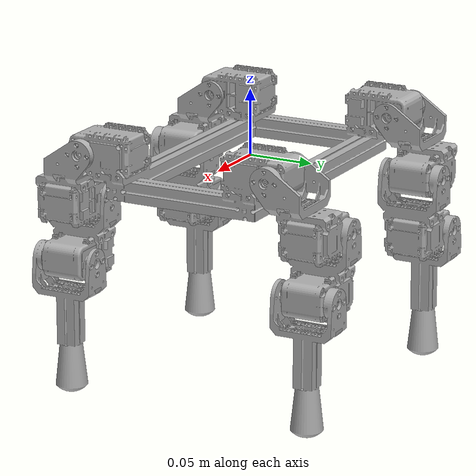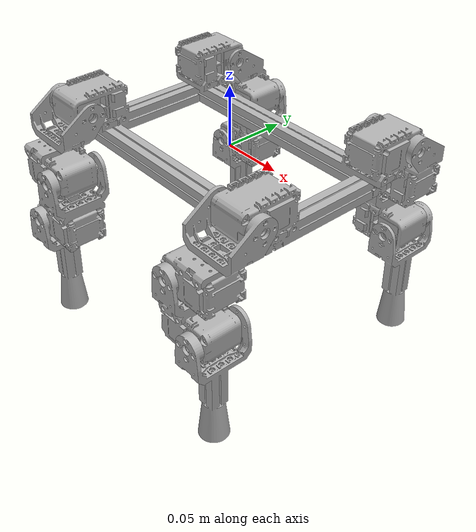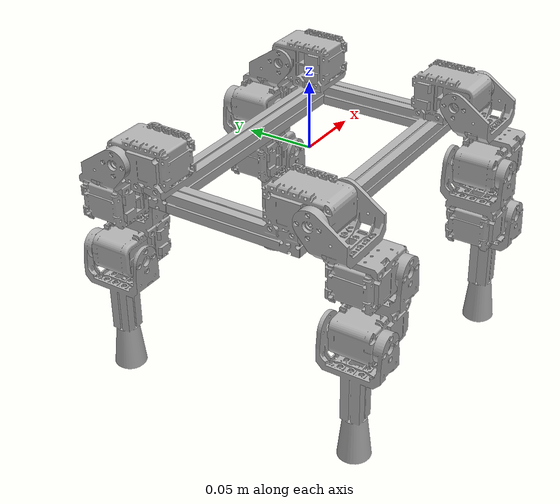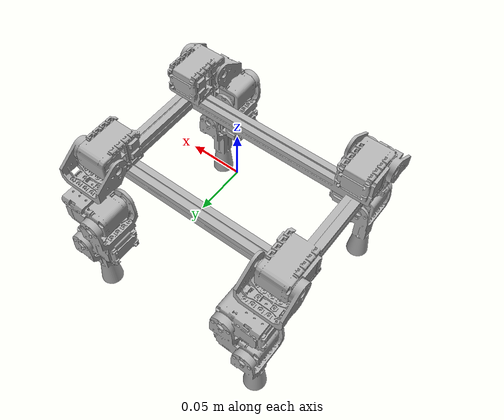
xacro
<?xml version="1.0" ?>
<robot name="sparky6" xmlns:xacro="http://www.ros.org/wiki/xacro">

<xacro:include filename="$(find sparky6_description)/urdf/materials.xacro" />
<xacro:include filename="$(find sparky6_description)/urdf/sparky6.trans" />
<xacro:include filename="$(find sparky6_description)/urdf/sparky6.gazebo" />
<link name="base_link">
  <inertial>
    <origin rpy="0 0 0" xyz="7.299055908234209e-06 -4.907460487480364e-05 0.008379944472130002"/>
    <mass value="0.29530745125532065"/>
    <inertia ixx="0.001007" ixy="1.1e-05" ixz="-1e-06" iyy="0.002439" iyz="-0.0" izz="0.003326"/>
  </inertial>
  <visual>
    <origin rpy="0 0 0" xyz="0 0 0"/>
    <geometry>
      <mesh filename="package://sparky6_description/meshes/base_link.stl" scale="0.001 0.001 0.001"/>
    </geometry>
    <material name="silver"/>
  </visual>
  <collision>
    <origin rpy="0 0 0" xyz="0 0 0"/>
    <geometry>
      <mesh filename="package://sparky6_description/meshes/base_link.stl" scale="0.001 0.001 0.001"/>
    </geometry>
  </collision>
</link>

<link name="rf_hip_1">
  <inertial>
    <origin rpy="0 0 0" xyz="-0.020504591046096754 -0.020916720968156957 -0.035571117115763856"/>
    <mass value="0.05388908972741452"/>
    <inertia ixx="1.8e-05" ixy="-1e-06" ixz="-3e-06" iyy="2.3e-05" iyz="-4e-06" izz="1.9e-05"/>
  </inertial>
  <visual>
    <origin rpy="0 0 0" xyz="-0.111298 0.075143 -0.019615"/>
    <geometry>
      <mesh filename="package://sparky6_description/meshes/rf_hip_1.stl" scale="0.001 0.001 0.001"/>
    </geometry>
    <material name="silver"/>
  </visual>
  <collision>
    <origin rpy="0 0 0" xyz="-0.111298 0.075143 -0.019615"/>
    <geometry>
      <mesh filename="package://sparky6_description/meshes/rf_hip_1.stl" scale="0.001 0.001 0.001"/>
    </geometry>
  </collision>
</link>

<link name="rf_upper_1">
  <inertial>
    <origin rpy="0 0 0" xyz="0.007395927338858896 0.01297355912901861 -0.03891819141199494"/>
    <mass value="0.0527957388945323"/>
    <inertia ixx="1.8e-05" ixy="-0.0" ixz="2e-06" iyy="2e-05" iyz="1e-06" izz="1.6e-05"/>
  </inertial>
  <visual>
    <origin rpy="0 0 0" xyz="-0.075104 0.111743 0.022385"/>
    <geometry>
      <mesh filename="package://sparky6_description/meshes/rf_upper_1.stl" scale="0.001 0.001 0.001"/>
    </geometry>
    <material name="silver"/>
  </visual>
  <collision>
    <origin rpy="0 0 0" xyz="-0.075104 0.111743 0.022385"/>
    <geometry>
      <mesh filename="package://sparky6_description/meshes/rf_upper_1.stl" scale="0.001 0.001 0.001"/>
    </geometry>
  </collision>
</link>

<link name="rf_lower_1">
  <inertial>
    <origin rpy="0 0 0" xyz="-0.0007002370548039455 0.012844858668187659 -0.052271117977042425"/>
    <mass value="0.02761962493772662"/>
    <inertia ixx="3.2e-05" ixy="0.0" ixz="-0.0" iyy="3e-05" iyz="1e-06" izz="4e-06"/>
  </inertial>
  <visual>
    <origin rpy="0 0 0" xyz="-0.097604 0.11165 0.067385"/>
    <geometry>
      <mesh filename="package://sparky6_description/meshes/rf_lower_1.stl" scale="0.001 0.001 0.001"/>
    </geometry>
    <material name="silver"/>
  </visual>
  <collision>
    <origin rpy="0 0 0" xyz="-0.097604 0.11165 0.067385"/>
    <geometry>
      <mesh filename="package://sparky6_description/meshes/rf_lower_1.stl" scale="0.001 0.001 0.001"/>
    </geometry>
  </collision>
</link>

<link name="lf_hip_1">
  <inertial>
    <origin rpy="0 0 0" xyz="-0.020504590999523772 0.020917069609504638 -0.035571116932230584"/>
    <mass value="0.05388908979068711"/>
    <inertia ixx="1.8e-05" ixy="1e-06" ixz="-3e-06" iyy="2.3e-05" iyz="4e-06" izz="1.9e-05"/>
  </inertial>
  <visual>
    <origin rpy="0 0 0" xyz="-0.111298 -0.074744 -0.019615"/>
    <geometry>
      <mesh filename="package://sparky6_description/meshes/lf_hip_1.stl" scale="0.001 0.001 0.001"/>
    </geometry>
    <material name="silver"/>
  </visual>
  <collision>
    <origin rpy="0 0 0" xyz="-0.111298 -0.074744 -0.019615"/>
    <geometry>
      <mesh filename="package://sparky6_description/meshes/lf_hip_1.stl" scale="0.001 0.001 0.001"/>
    </geometry>
  </collision>
</link>

<link name="lf_upper_1">
  <inertial>
    <origin rpy="0 0 0" xyz="0.007395909911934839 -0.012974204347680082 -0.03891809893494623"/>
    <mass value="0.05279586200500898"/>
    <inertia ixx="1.8e-05" ixy="0.0" ixz="2e-06" iyy="2e-05" iyz="-1e-06" izz="1.6e-05"/>
  </inertial>
  <visual>
    <origin rpy="0 0 0" xyz="-0.075104 -0.111345 0.022385"/>
    <geometry>
      <mesh filename="package://sparky6_description/meshes/lf_upper_1.stl" scale="0.001 0.001 0.001"/>
    </geometry>
    <material name="silver"/>
  </visual>
  <collision>
    <origin rpy="0 0 0" xyz="-0.075104 -0.111345 0.022385"/>
    <geometry>
      <mesh filename="package://sparky6_description/meshes/lf_upper_1.stl" scale="0.001 0.001 0.001"/>
    </geometry>
  </collision>
</link>

<link name="lf_lower_1">
  <inertial>
    <origin rpy="0 0 0" xyz="0.000700770909144055 -0.01284450998542723 -0.05227111797704169"/>
    <mass value="0.02761962493772662"/>
    <inertia ixx="3.2e-05" ixy="0.0" ixz="0.0" iyy="3e-05" iyz="-1e-06" izz="4e-06"/>
  </inertial>
  <visual>
    <origin rpy="0 0 0" xyz="-0.097604 -0.111251 0.067385"/>
    <geometry>
      <mesh filename="package://sparky6_description/meshes/lf_lower_1.stl" scale="0.001 0.001 0.001"/>
    </geometry>
    <material name="silver"/>
  </visual>
  <collision>
    <origin rpy="0 0 0" xyz="-0.097604 -0.111251 0.067385"/>
    <geometry>
      <mesh filename="package://sparky6_description/meshes/lf_lower_1.stl" scale="0.001 0.001 0.001"/>
    </geometry>
  </collision>
</link>

<link name="rh_hip_1">
  <inertial>
    <origin rpy="0 0 0" xyz="0.020504349543890577 -0.02091666919420533 -0.03557111693223084"/>
    <mass value="0.05388908979068711"/>
    <inertia ixx="1.8e-05" ixy="1e-06" ixz="3e-06" iyy="2.3e-05" iyz="-4e-06" izz="1.9e-05"/>
  </inertial>
  <visual>
    <origin rpy="0 0 0" xyz="0.109652 0.07416 -0.019615"/>
    <geometry>
      <mesh filename="package://sparky6_description/meshes/rh_hip_1.stl" scale="0.001 0.001 0.001"/>
    </geometry>
    <material name="silver"/>
  </visual>
  <collision>
    <origin rpy="0 0 0" xyz="0.109652 0.07416 -0.019615"/>
    <geometry>
      <mesh filename="package://sparky6_description/meshes/rh_hip_1.stl" scale="0.001 0.001 0.001"/>
    </geometry>
  </collision>
</link>

<link name="rh_upper_1">
  <inertial>
    <origin rpy="0 0 0" xyz="-0.007395151367566591 0.012973604762980623 -0.03891809893494652"/>
    <mass value="0.05279586200500898"/>
    <inertia ixx="1.8e-05" ixy="0.0" ixz="-2e-06" iyy="2e-05" iyz="1e-06" izz="1.6e-05"/>
  </inertial>
  <visual>
    <origin rpy="0 0 0" xyz="0.073459 0.11076 0.022385"/>
    <geometry>
      <mesh filename="package://sparky6_description/meshes/rh_upper_1.stl" scale="0.001 0.001 0.001"/>
    </geometry>
    <material name="silver"/>
  </visual>
  <collision>
    <origin rpy="0 0 0" xyz="0.073459 0.11076 0.022385"/>
    <geometry>
      <mesh filename="package://sparky6_description/meshes/rh_upper_1.stl" scale="0.001 0.001 0.001"/>
    </geometry>
  </collision>
</link>

<link name="rh_lower_1">
  <inertial>
    <origin rpy="0 0 0" xyz="-0.0007000123647771528 0.012844910400728604 -0.05227111797704198"/>
    <mass value="0.02761962493772662"/>
    <inertia ixx="3.2e-05" ixy="0.0" ixz="-0.0" iyy="3e-05" iyz="1e-06" izz="4e-06"/>
  </inertial>
  <visual>
    <origin rpy="0 0 0" xyz="0.095959 0.110667 0.067385"/>
    <geometry>
      <mesh filename="package://sparky6_description/meshes/rh_lower_1.stl" scale="0.001 0.001 0.001"/>
    </geometry>
    <material name="silver"/>
  </visual>
  <collision>
    <origin rpy="0 0 0" xyz="0.095959 0.110667 0.067385"/>
    <geometry>
      <mesh filename="package://sparky6_description/meshes/rh_lower_1.stl" scale="0.001 0.001 0.001"/>
    </geometry>
  </collision>
</link>

<link name="lh_hip_1">
  <inertial>
    <origin rpy="0 0 0" xyz="0.020504324900517096 0.020916111095980364 -0.03557111711576425"/>
    <mass value="0.05388908972741452"/>
    <inertia ixx="1.8e-05" ixy="-1e-06" ixz="3e-06" iyy="2.3e-05" iyz="4e-06" izz="1.9e-05"/>
  </inertial>
  <visual>
    <origin rpy="0 0 0" xyz="0.111992 -0.074753 -0.019615"/>
    <geometry>
      <mesh filename="package://sparky6_description/meshes/lh_hip_1.stl" scale="0.001 0.001 0.001"/>
    </geometry>
    <material name="silver"/>
  </visual>
  <collision>
    <origin rpy="0 0 0" xyz="0.111992 -0.074753 -0.019615"/>
    <geometry>
      <mesh filename="package://sparky6_description/meshes/lh_hip_1.stl" scale="0.001 0.001 0.001"/>
    </geometry>
  </collision>
</link>

<link name="lh_upper_1">
  <inertial>
    <origin rpy="0 0 0" xyz="-0.007395193484439774 -0.01297416900119433 -0.03891819141199544"/>
    <mass value="0.0527957388945323"/>
    <inertia ixx="1.8e-05" ixy="-0.0" ixz="-2e-06" iyy="2e-05" iyz="-1e-06" izz="1.6e-05"/>
  </inertial>
  <visual>
    <origin rpy="0 0 0" xyz="0.075799 -0.111353 0.022385"/>
    <geometry>
      <mesh filename="package://sparky6_description/meshes/lh_upper_1.stl" scale="0.001 0.001 0.001"/>
    </geometry>
    <material name="silver"/>
  </visual>
  <collision>
    <origin rpy="0 0 0" xyz="0.075799 -0.111353 0.022385"/>
    <geometry>
      <mesh filename="package://sparky6_description/meshes/lh_upper_1.stl" scale="0.001 0.001 0.001"/>
    </geometry>
  </collision>
</link>

<link name="lh_lower_1">
  <inertial>
    <origin rpy="0 0 0" xyz="0.0007009709092222066 -0.012844468540364029 -0.052271117977042175"/>
    <mass value="0.02761962493772662"/>
    <inertia ixx="3.2e-05" ixy="0.0" ixz="0.0" iyy="3e-05" iyz="-1e-06" izz="4e-06"/>
  </inertial>
  <visual>
    <origin rpy="0 0 0" xyz="0.098299 -0.111259 0.067385"/>
    <geometry>
      <mesh filename="package://sparky6_description/meshes/lh_lower_1.stl" scale="0.001 0.001 0.001"/>
    </geometry>
    <material name="silver"/>
  </visual>
  <collision>
    <origin rpy="0 0 0" xyz="0.098299 -0.111259 0.067385"/>
    <geometry>
      <mesh filename="package://sparky6_description/meshes/lh_lower_1.stl" scale="0.001 0.001 0.001"/>
    </geometry>
  </collision>
</link>

<joint name="rf1" type="revolute">
  <origin rpy="0 0 0" xyz="0.111298 -0.075143 0.019615"/>
  <parent link="base_link"/>
  <child link="rf_hip_1"/>
  <axis xyz="1.0 -0.0 -0.0"/>
  <limit effort="5" lower="-3.14159265359" upper="3.14159265359" velocity="5"/>
</joint>

<joint name="rf2" type="revolute">
  <origin rpy="0 0 0" xyz="-0.036194 -0.0366 -0.042"/>
  <parent link="rf_hip_1"/>
  <child link="rf_upper_1"/>
  <axis xyz="-0.0 1.0 -0.0"/>
  <limit effort="5" lower="-3.14159265359" upper="3.14159265359" velocity="5"/>
</joint>

<joint name="rf3" type="revolute">
  <origin rpy="0 0 0" xyz="0.0225 9.3e-05 -0.045"/>
  <parent link="rf_upper_1"/>
  <child link="rf_lower_1"/>
  <axis xyz="-0.0 -1.0 0.0"/>
  <limit effort="5" lower="-3.14159265359" upper="3.14159265359" velocity="5"/>
</joint>

<joint name="lf1" type="revolute">
  <origin rpy="0 0 0" xyz="0.111298 0.074744 0.019615"/>
  <parent link="base_link"/>
  <child link="lf_hip_1"/>
  <axis xyz="1.0 -0.0 -0.0"/>
  <limit effort="5" lower="-3.14159265359" upper="3.14159265359" velocity="5"/>
</joint>

<joint name="lf2" type="revolute">
  <origin rpy="0 0 0" xyz="-0.036194 0.036601 -0.042"/>
  <parent link="lf_hip_1"/>
  <child link="lf_upper_1"/>
  <axis xyz="-0.0 1.0 -0.0"/>
  <limit effort="5" lower="-3.14159265359" upper="3.14159265359" velocity="5"/>
</joint>

<joint name="lf3" type="revolute">
  <origin rpy="0 0 0" xyz="0.0225 -9.4e-05 -0.045"/>
  <parent link="lf_upper_1"/>
  <child link="lf_lower_1"/>
  <axis xyz="-0.0 1.0 -0.0"/>
  <limit effort="5" lower="-3.14159265359" upper="3.14159265359" velocity="5"/>
</joint>

<joint name="rh1" type="revolute">
  <origin rpy="0 0 0" xyz="-0.109652 -0.07416 0.019615"/>
  <parent link="base_link"/>
  <child link="rh_hip_1"/>
  <axis xyz="-1.0 0.0 0.0"/>
  <limit effort="5" lower="-3.14159265359" upper="3.14159265359" velocity="5"/>
</joint>

<joint name="rh2" type="revolute">
  <origin rpy="0 0 0" xyz="0.036193 -0.0366 -0.042"/>
  <parent link="rh_hip_1"/>
  <child link="rh_upper_1"/>
  <axis xyz="0.0 1.0 -0.0"/>
  <limit effort="5" lower="-3.14159265359" upper="3.14159265359" velocity="5"/>
</joint>

<joint name="rh3" type="revolute">
  <origin rpy="0 0 0" xyz="-0.0225 9.3e-05 -0.045"/>
  <parent link="rh_upper_1"/>
  <child link="rh_lower_1"/>
  <axis xyz="0.0 -1.0 -0.0"/>
  <limit effort="5" lower="-3.14159265359" upper="3.14159265359" velocity="5"/>
</joint>

<joint name="lh1" type="revolute">
  <origin rpy="0 0 0" xyz="-0.111992 0.074753 0.019615"/>
  <parent link="base_link"/>
  <child link="lh_hip_1"/>
  <axis xyz="1.0 0.0 0.0"/>
  <limit effort="5" lower="-3.14159265359" upper="3.14159265359" velocity="5"/>
</joint>

<joint name="lh2" type="revolute">
  <origin rpy="0 0 0" xyz="0.036193 0.0366 -0.042"/>
  <parent link="lh_hip_1"/>
  <child link="lh_upper_1"/>
  <axis xyz="0.0 1.0 -0.0"/>
  <limit effort="5" lower="-3.14159265359" upper="3.14159265359" velocity="5"/>
</joint>

<joint name="lh3" type="revolute">
  <origin rpy="0 0 0" xyz="-0.0225 -9.4e-05 -0.045"/>
  <parent link="lh_upper_1"/>
  <child link="lh_lower_1"/>
  <axis xyz="0.0 1.0 -0.0"/>
  <limit effort="5" lower="-3.14159265359" upper="3.14159265359" velocity="5"/>
</joint>

<!--feet tf for champ quadruped setup-->
  <link name="rf_foot"/>
  <joint name="rf_foot_to_lower_leg" type="fixed">
    <parent link="rf_lower_1"/>
    <child link="rf_foot"/>
    <origin rpy="0 0 0" xyz="0 .014 -.1025"/>
  </joint>

  <link name="lf_foot"/>
  <joint name="lf_foot_to_lower_leg" type="fixed">
    <parent link="lf_lower_1"/>
    <child link="lf_foot"/>
    <origin rpy="0 0 0" xyz="0 -.014 -.1025"/>
  </joint>

  <link name="rh_foot"/>
  <joint name="rh_foot_to_lower_leg" type="fixed">
    <parent link="rh_lower_1"/>
    <child link="rh_foot"/>
    <origin rpy="0 0 0" xyz="0 .014 -.1025"/>
  </joint>

  <link name="lh_foot"/>
  <joint name="lh_foot_to_lower_leg" type="fixed">
    <parent link="lh_lower_1"/>
    <child link="lh_foot"/>
    <origin rpy="0 0 0" xyz="0 -.014 -.1025"/>
  </joint>

</robot>

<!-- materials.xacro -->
<robot name="sparky6" xmlns:xacro="http://www.ros.org/wiki/xacro" >

<material name="silver">
  <color rgba="0.700 0.700 0.700 1.000"/>
</material>

</robot>

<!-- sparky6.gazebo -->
<robot name="sparky6" xmlns:xacro="http://www.ros.org/wiki/xacro" >

<xacro:property name="body_color" value="Gazebo/Silver" />

<gazebo>
  <plugin filename="libgazebo_ros_control.so" name="control"/>
</gazebo>
<gazebo reference="base_link">
  <material>${body_color}</material>
  <gravity>true</gravity>
</gazebo>

<gazebo reference="rf_hip_1">
  <material>${body_color}</material>
  <selfCollide>true</selfCollide>
</gazebo>

<gazebo reference="rf_upper_1">
  <material>${body_color}</material>
  <selfCollide>true</selfCollide>
</gazebo>

<gazebo reference="rf_lower_1">
  <material>${body_color}</material>
    <mu1>0.9</mu1>
    <mu2>0.9</mu2>
    <minDepth>0.001</minDepth>
  <selfCollide>true</selfCollide>
</gazebo>

<gazebo reference="lf_hip_1">
  <material>${body_color}</material>
</gazebo>

<gazebo reference="lf_upper_1">
  <material>${body_color}</material>
</gazebo>

<gazebo reference="lf_lower_1">
  <material>${body_color}</material>
    <mu1>0.9</mu1>
    <mu2>0.9</mu2>
    <minDepth>0.001</minDepth>
  <selfCollide>true</selfCollide>
</gazebo>

<gazebo reference="rh_hip_1">
  <material>${body_color}</material>
</gazebo>

<gazebo reference="rh_upper_1">
  <material>${body_color}</material>
</gazebo>

<gazebo reference="rh_lower_1">
  <material>${body_color}</material>
    <mu1>0.9</mu1>
    <mu2>0.9</mu2>
    <minDepth>0.001</minDepth>
  <selfCollide>true</selfCollide>
</gazebo>

<gazebo reference="lh_hip_1">
  <material>${body_color}</material>
</gazebo>

<gazebo reference="lh_upper_1">
  <material>${body_color}</material>
</gazebo>

<gazebo reference="lh_lower_1">
  <material>${body_color}</material>
    <mu1>0.9</mu1>
    <mu2>0.9</mu2>
    <minDepth>0.001</minDepth>
  <selfCollide>true</selfCollide>
</gazebo>

</robot>
